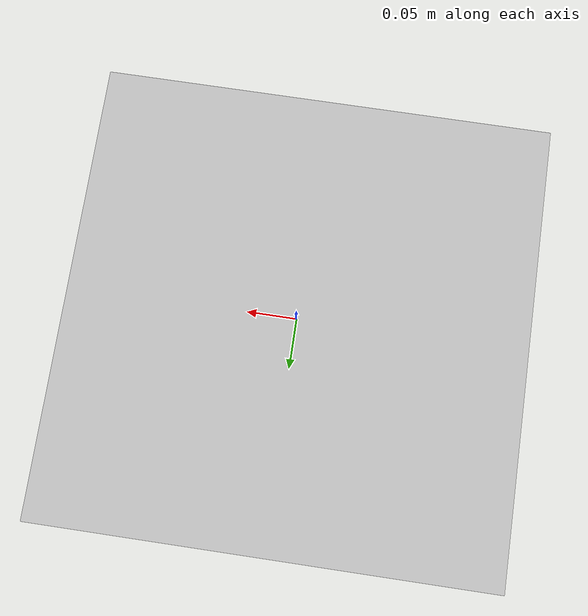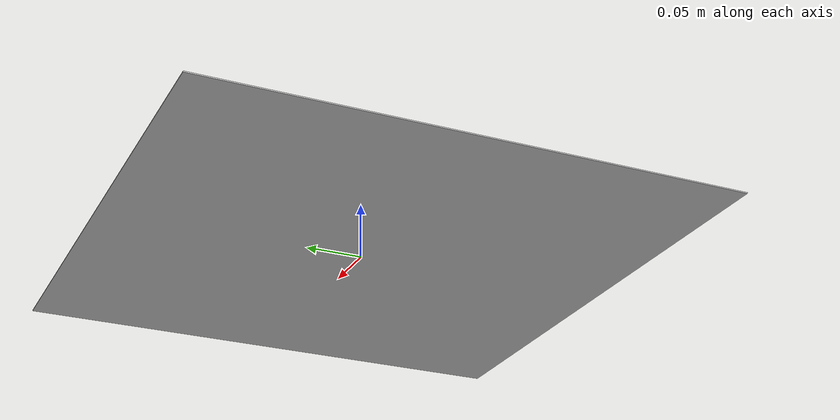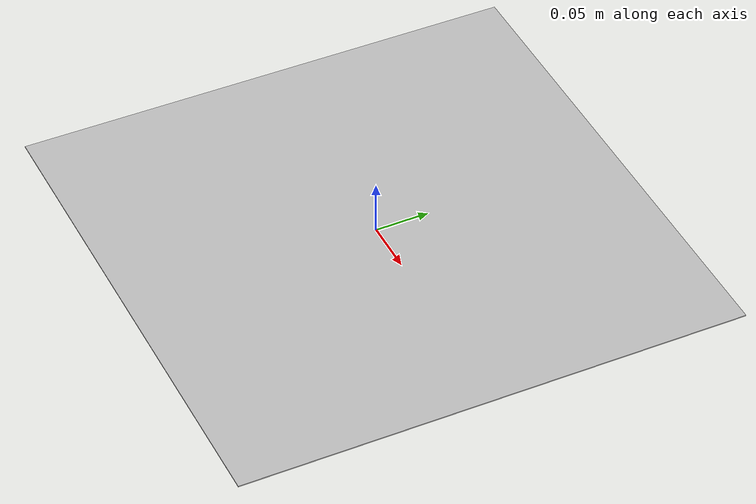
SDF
<?xml version="1.0"?>
<sdf version="1.5">
    <model name="aruco_202">
        <static>true</static>
        <link name="marker_202_link">
            <pose>0 0 1e-3 0 0 1.5707963267948966</pose>
            <visual name="visual_marker_202">
                <cast_shadows>false</cast_shadows>
                <geometry>
                    <box>
                        <size>0.4666666666666666 0.4666666666666666 1e-3</size>
                    </box>
                </geometry>
                <material>
                    <script>
                        <uri>model://aruco_202/materials/scripts</uri>
                        <uri>model://aruco_202/materials/textures</uri>
                        <name>aruco/marker_202</name>
                    </script>
                </material>
            </visual>
        </link>
    </model>
</sdf>
